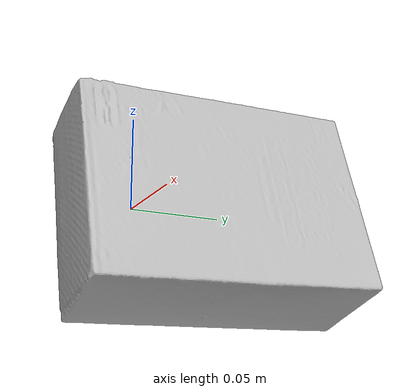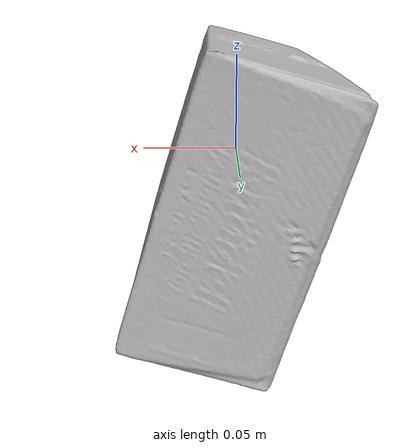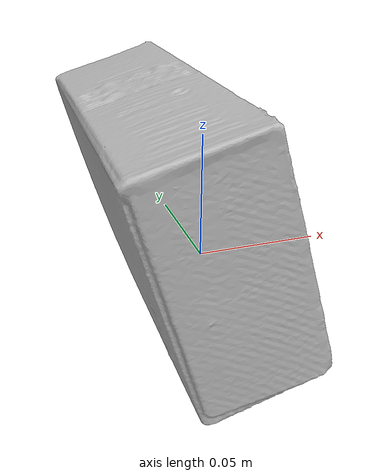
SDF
<?xml version='1.0'?>
<sdf version="1.4">
  <model name="InstantDumplings">
    <static>false</static>
    <link name="link">
      <inertial>
        <pose>0.0030736396183690604 0.044920677601643776 0.0027713080704981187 -1.5917842071751886 0.29621772549261166 3.1340324576561702</pose>
        <mass>0.030795506754469839</mass>
        <inertia>
          <ixx>0.00033732321447084337</ixx>
          <ixy>2.60329892976699e-20</ixy>
          <ixz>1.5335394342587343e-20</ixz>
          <iyy>0.00025409281295158596</iyy>
          <iyz>5.145391649928512e-20</iyz>
          <izz>0.00014703836653836292</izz>
        </inertia>
      </inertial>
      <collision name="collision">
        <geometry>
          <mesh>
            <!-- Use a downsampled mesh for collisions -->
            <uri>model:///InstantDumplings/InstantDumplings_250_collision.obj</uri>
	        </mesh>
        </geometry>
        <surface>
      </surface>
      </collision>
      <visual name="visual">
        <geometry>
          <mesh>
            <uri>model:///InstantDumplings/InstantDumplings_25k_tex.obj</uri>
	        </mesh>
        </geometry>
        <material>
          <script>
            <uri>model:///InstantDumplings/InstantDumplings.material</uri>
            <name>InstantDumplings</name>
          </script>
        </material>
      </visual>
    </link>
  </model>
</sdf>
